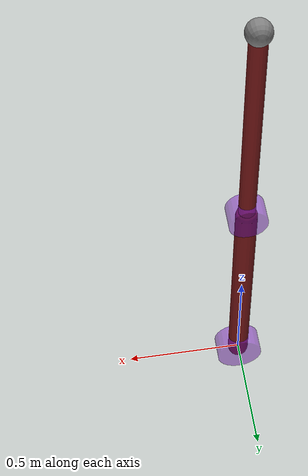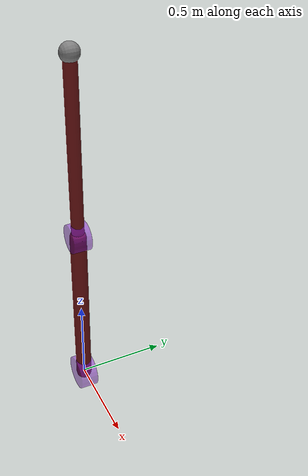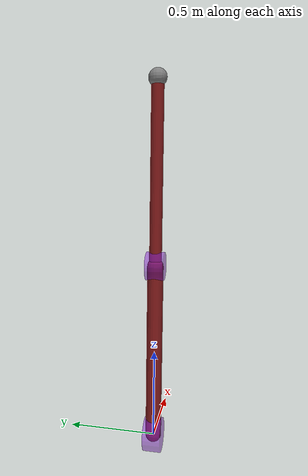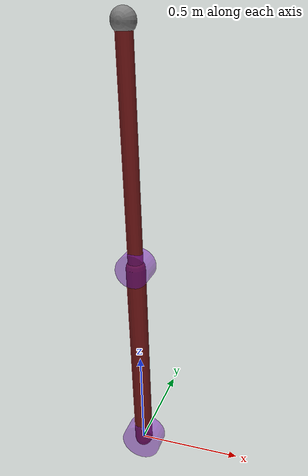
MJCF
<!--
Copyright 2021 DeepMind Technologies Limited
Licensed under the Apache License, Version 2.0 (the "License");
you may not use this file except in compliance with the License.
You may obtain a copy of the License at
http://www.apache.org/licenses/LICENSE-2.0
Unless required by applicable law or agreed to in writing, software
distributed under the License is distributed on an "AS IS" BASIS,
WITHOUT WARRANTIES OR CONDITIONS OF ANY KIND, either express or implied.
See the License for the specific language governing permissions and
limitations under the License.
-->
<mujoco model="Pendulum">
  <option timestep="0.0001" integrator="RK4">
	<flag sensornoise="enable" energy="enable" />
  </option>
  <visual>
    <rgba haze=".3 .3 .3 1"/>
  </visual>

  <default>
    <joint type="hinge" pos="0 0 0" axis="0 0 1" damping="0.1"/>
    <motor ctrllimited="true" ctrlrange="-100 100"/>
  </default>

  <asset>
    <texture type="skybox" builtin="gradient" rgb1="0.6 0.6 0.6" rgb2="0 0 0" width="512" height="512"/>

    <texture name="texplane" type="2d" builtin="checker" rgb1=".25 .25 .25" rgb2=".3 .3 .3" width="512" height="512" mark="cross" markrgb=".8 .8 .8"/>

    <material name="matplane" reflectance="0.3" texture="texplane" texrepeat="1 1" texuniform="true"/>
  </asset>

  <worldbody>
    <geom name="floor" pos="0 0 -2.1" size="0 0 1" type="plane" material="matplane"/>

    <light directional="true" diffuse=".8 .8 .8" specular=".2 .2 .2" pos="0 0 5" dir="0 0 -1"/>

    <body name="link 1" pos="0 0 0" quat="0.5 0.5 -0.5 0.5">
      <geom name="upper arm" type="capsule" size="0.045" fromto="0 0 0 1 0 0" rgba=".5 .1 .1 1" mass="1"/>
      <joint name="shoulder"/>
      <geom name="shoulder" type="cylinder" pos="0 0 0" size=".1 .05" rgba=".5 .1 .8 .5" mass="0" group="1"/>

      <body  name="link 2" pos="1 0 0">
        <geom name="forearm" type="capsule" size="0.035" fromto="0 0 0 1 0 0" rgba=".5 .1 .1 1" mass="1"/>
        <joint name="elbow"/>
        <geom name="elbow" type="cylinder" pos="0 0 0" size=".08 .05" rgba=".5 .1 .8 .5" mass="0" group="1"/>
		<site name="endeff" pos="1 0 0" size="0.05"/>
      </body>
    </body>
  </worldbody>

  <actuator>
    <motor name="shoulder" joint="shoulder"/>
    <motor name="elbow" joint="elbow" />
  </actuator>
</mujoco>
